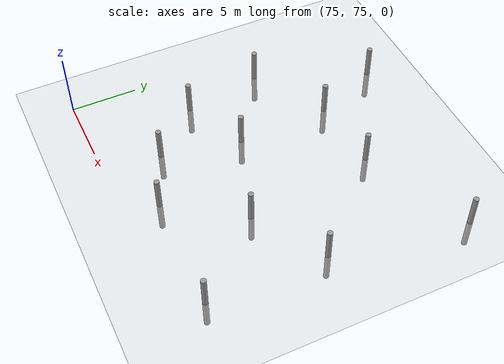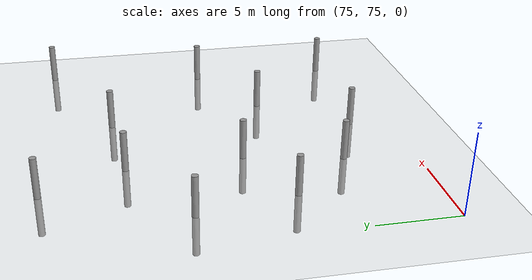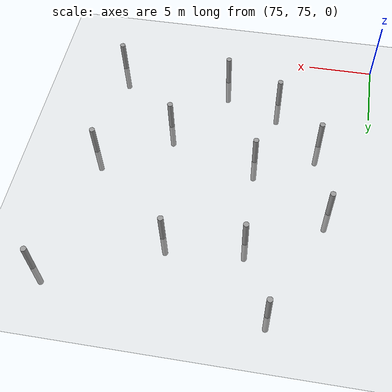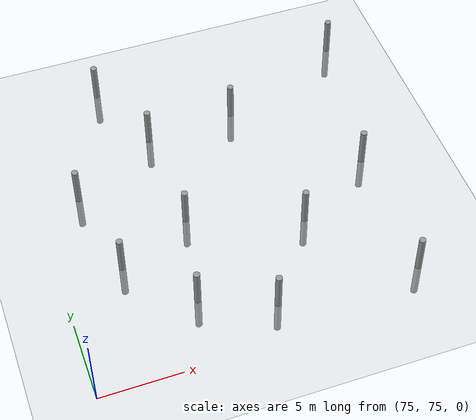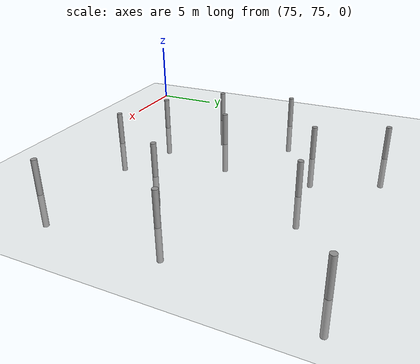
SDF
<sdf version="1.6">
 <world name="default">
  <model name="ground_plane">
   <static>1</static>
   <link name="link">
    <collision name="collision">
     <geometry><plane><normal>0 0 1</normal><size>100 100</size></plane></geometry>
     <surface><friction><ode><mu>100</mu><mu2>50</mu2></ode></friction></surface>
    </collision>
    <visual name="visual">
     <cast_shadows>0</cast_shadows>
     <geometry><plane><normal>0 0 1</normal><size>100 100</size></plane></geometry>
     <material>
      <script><uri>file://media/materials/scripts/gazebo.material</uri><name>Gazebo/Grey</name></script>
     </material>
    </visual>
   </link>
  </model>
  <model name="empty_pillars_2">
   <model name="empty_pillar_clone_1">
    <link name="link">
     <inertial>
      <mass>1</mass>
      <inertia><ixx>0.145833</ixx><ixy>0</ixy><ixz>0</ixz><iyy>0.145833</iyy><iyz>0</iyz><izz>0.125</izz></inertia>
     </inertial>
     <visual name="visual">
      <geometry><cylinder><radius>0.2</radius><length>5</length></cylinder></geometry>
      <material>
       <script><name>Gazebo/Grey</name><uri>file://media/materials/scripts/gazebo.material</uri></script>
       <shader type="vertex"><normal_map>__default__</normal_map></shader>
       <ambient>0.3 0.3 0.3 1</ambient>
       <diffuse>0.7 0.7 0.7 1</diffuse>
       <specular>0.01 0.01 0.01 1</specular>
       <emissive>0 0 0 1</emissive>
      </material>
     </visual>
     <collision name="collision">
      <geometry><cylinder><radius>0.05</radius><length>5</length></cylinder></geometry>
      <surface>
       <friction>
        <ode><mu>1</mu><mu2>1</mu2><fdir1>0 0 0</fdir1><slip1>0</slip1><slip2>0</slip2></ode>
        <torsional>
         <coefficient>1</coefficient>
         <patch_radius>0</patch_radius>
         <surface_radius>0</surface_radius>
         <use_patch_radius>1</use_patch_radius>
         <ode><slip>0</slip></ode>
        </torsional>
       </friction>
       <bounce><restitution_coefficient>0</restitution_coefficient><threshold>1e+06</threshold></bounce>
       <contact>
        <collide_without_contact>0</collide_without_contact>
        <collide_without_contact_bitmask>1</collide_without_contact_bitmask>
        <collide_bitmask>1</collide_bitmask>
        <ode>
         <soft_cfm>0</soft_cfm>
         <soft_erp>0.2</soft_erp>
         <kp>1e+13</kp>
         <kd>1</kd>
         <max_vel>0.01</max_vel>
         <min_depth>0</min_depth>
        </ode>
        <bullet>
         <split_impulse>1</split_impulse>
         <split_impulse_penetration_threshold>-0.01</split_impulse_penetration_threshold>
         <soft_cfm>0</soft_cfm>
         <soft_erp>0.2</soft_erp>
         <kp>1e+13</kp>
         <kd>1</kd>
        </bullet>
       </contact>
      </surface>
     </collision>
    </link>
    <static>0</static>
    <pose>8.92248 2.14838 0 0 -0 0</pose>
   </model>
   <model name="empty_pillar_clone_26">
    <link name="link">
     <inertial>
      <mass>1</mass>
      <inertia><ixx>0.145833</ixx><ixy>0</ixy><ixz>0</ixz><iyy>0.145833</iyy><iyz>0</iyz><izz>0.125</izz></inertia>
     </inertial>
     <visual name="visual">
      <geometry><cylinder><radius>0.2</radius><length>5</length></cylinder></geometry>
      <material>
       <script><name>Gazebo/Grey</name><uri>file://media/materials/scripts/gazebo.material</uri></script>
       <shader type="vertex"><normal_map>__default__</normal_map></shader>
       <ambient>0.3 0.3 0.3 1</ambient>
       <diffuse>0.7 0.7 0.7 1</diffuse>
       <specular>0.01 0.01 0.01 1</specular>
       <emissive>0 0 0 1</emissive>
      </material>
     </visual>
     <collision name="collision">
      <geometry><cylinder><radius>0.05</radius><length>5</length></cylinder></geometry>
      <surface>
       <friction>
        <ode><mu>1</mu><mu2>1</mu2><fdir1>0 0 0</fdir1><slip1>0</slip1><slip2>0</slip2></ode>
        <torsional>
         <coefficient>1</coefficient>
         <patch_radius>0</patch_radius>
         <surface_radius>0</surface_radius>
         <use_patch_radius>1</use_patch_radius>
         <ode><slip>0</slip></ode>
        </torsional>
       </friction>
       <bounce><restitution_coefficient>0</restitution_coefficient><threshold>1e+06</threshold></bounce>
       <contact>
        <collide_without_contact>0</collide_without_contact>
        <collide_without_contact_bitmask>1</collide_without_contact_bitmask>
        <collide_bitmask>1</collide_bitmask>
        <ode>
         <soft_cfm>0</soft_cfm>
         <soft_erp>0.2</soft_erp>
         <kp>1e+13</kp>
         <kd>1</kd>
         <max_vel>0.01</max_vel>
         <min_depth>0</min_depth>
        </ode>
        <bullet>
         <split_impulse>1</split_impulse>
         <split_impulse_penetration_threshold>-0.01</split_impulse_penetration_threshold>
         <soft_cfm>0</soft_cfm>
         <soft_erp>0.2</soft_erp>
         <kp>1e+13</kp>
         <kd>1</kd>
        </bullet>
       </contact>
      </surface>
     </collision>
    </link>
    <static>0</static>
    <pose>7.70652 20.1444 0 0 -0 0</pose>
   </model>
   <model name="empty_pillar_clone_27">
    <link name="link">
     <inertial>
      <mass>1</mass>
      <inertia><ixx>0.145833</ixx><ixy>0</ixy><ixz>0</ixz><iyy>0.145833</iyy><iyz>0</iyz><izz>0.125</izz></inertia>
     </inertial>
     <visual name="visual">
      <geometry><cylinder><radius>0.2</radius><length>5</length></cylinder></geometry>
      <material>
       <script><name>Gazebo/Grey</name><uri>file://media/materials/scripts/gazebo.material</uri></script>
       <shader type="vertex"><normal_map>__default__</normal_map></shader>
       <ambient>0.3 0.3 0.3 1</ambient>
       <diffuse>0.7 0.7 0.7 1</diffuse>
       <specular>0.01 0.01 0.01 1</specular>
       <emissive>0 0 0 1</emissive>
      </material>
     </visual>
     <collision name="collision">
      <geometry><cylinder><radius>0.05</radius><length>5</length></cylinder></geometry>
      <surface>
       <friction>
        <ode><mu>1</mu><mu2>1</mu2><fdir1>0 0 0</fdir1><slip1>0</slip1><slip2>0</slip2></ode>
        <torsional>
         <coefficient>1</coefficient>
         <patch_radius>0</patch_radius>
         <surface_radius>0</surface_radius>
         <use_patch_radius>1</use_patch_radius>
         <ode><slip>0</slip></ode>
        </torsional>
       </friction>
       <bounce><restitution_coefficient>0</restitution_coefficient><threshold>1e+06</threshold></bounce>
       <contact>
        <collide_without_contact>0</collide_without_contact>
        <collide_without_contact_bitmask>1</collide_without_contact_bitmask>
        <collide_bitmask>1</collide_bitmask>
        <ode>
         <soft_cfm>0</soft_cfm>
         <soft_erp>0.2</soft_erp>
         <kp>1e+13</kp>
         <kd>1</kd>
         <max_vel>0.01</max_vel>
         <min_depth>0</min_depth>
        </ode>
        <bullet>
         <split_impulse>1</split_impulse>
         <split_impulse_penetration_threshold>-0.01</split_impulse_penetration_threshold>
         <soft_cfm>0</soft_cfm>
         <soft_erp>0.2</soft_erp>
         <kp>1e+13</kp>
         <kd>1</kd>
        </bullet>
       </contact>
      </surface>
     </collision>
    </link>
    <static>0</static>
    <pose>4.32163 11.823 0 0 -0 0</pose>
   </model>
   <model name="empty_pillar_clone_28">
    <link name="link">
     <inertial>
      <mass>1</mass>
      <inertia><ixx>0.145833</ixx><ixy>0</ixy><ixz>0</ixz><iyy>0.145833</iyy><iyz>0</iyz><izz>0.125</izz></inertia>
     </inertial>
     <visual name="visual">
      <geometry><cylinder><radius>0.2</radius><length>5</length></cylinder></geometry>
      <material>
       <script><name>Gazebo/Grey</name><uri>file://media/materials/scripts/gazebo.material</uri></script>
       <shader type="vertex"><normal_map>__default__</normal_map></shader>
       <ambient>0.3 0.3 0.3 1</ambient>
       <diffuse>0.7 0.7 0.7 1</diffuse>
       <specular>0.01 0.01 0.01 1</specular>
       <emissive>0 0 0 1</emissive>
      </material>
     </visual>
     <collision name="collision">
      <geometry><cylinder><radius>0.05</radius><length>5</length></cylinder></geometry>
      <surface>
       <friction>
        <ode><mu>1</mu><mu2>1</mu2><fdir1>0 0 0</fdir1><slip1>0</slip1><slip2>0</slip2></ode>
        <torsional>
         <coefficient>1</coefficient>
         <patch_radius>0</patch_radius>
         <surface_radius>0</surface_radius>
         <use_patch_radius>1</use_patch_radius>
         <ode><slip>0</slip></ode>
        </torsional>
       </friction>
       <bounce><restitution_coefficient>0</restitution_coefficient><threshold>1e+06</threshold></bounce>
       <contact>
        <collide_without_contact>0</collide_without_contact>
        <collide_without_contact_bitmask>1</collide_without_contact_bitmask>
        <collide_bitmask>1</collide_bitmask>
        <ode>
         <soft_cfm>0</soft_cfm>
         <soft_erp>0.2</soft_erp>
         <kp>1e+13</kp>
         <kd>1</kd>
         <max_vel>0.01</max_vel>
         <min_depth>0</min_depth>
        </ode>
        <bullet>
         <split_impulse>1</split_impulse>
         <split_impulse_penetration_threshold>-0.01</split_impulse_penetration_threshold>
         <soft_cfm>0</soft_cfm>
         <soft_erp>0.2</soft_erp>
         <kp>1e+13</kp>
         <kd>1</kd>
        </bullet>
       </contact>
      </surface>
     </collision>
    </link>
    <static>0</static>
    <pose>15.5447 15.5867 0 0 -0 0</pose>
   </model>
   <model name="empty_pillar_clone_29">
    <link name="link">
     <inertial>
      <mass>1</mass>
      <inertia><ixx>0.145833</ixx><ixy>0</ixy><ixz>0</ixz><iyy>0.145833</iyy><iyz>0</iyz><izz>0.125</izz></inertia>
     </inertial>
     <visual name="visual">
      <geometry><cylinder><radius>0.2</radius><length>5</length></cylinder></geometry>
      <material>
       <script><name>Gazebo/Grey</name><uri>file://media/materials/scripts/gazebo.material</uri></script>
       <shader type="vertex"><normal_map>__default__</normal_map></shader>
       <ambient>0.3 0.3 0.3 1</ambient>
       <diffuse>0.7 0.7 0.7 1</diffuse>
       <specular>0.01 0.01 0.01 1</specular>
       <emissive>0 0 0 1</emissive>
      </material>
     </visual>
     <collision name="collision">
      <geometry><cylinder><radius>0.05</radius><length>5</length></cylinder></geometry>
      <surface>
       <friction>
        <ode><mu>1</mu><mu2>1</mu2><fdir1>0 0 0</fdir1><slip1>0</slip1><slip2>0</slip2></ode>
        <torsional>
         <coefficient>1</coefficient>
         <patch_radius>0</patch_radius>
         <surface_radius>0</surface_radius>
         <use_patch_radius>1</use_patch_radius>
         <ode><slip>0</slip></ode>
        </torsional>
       </friction>
       <bounce><restitution_coefficient>0</restitution_coefficient><threshold>1e+06</threshold></bounce>
       <contact>
        <collide_without_contact>0</collide_without_contact>
        <collide_without_contact_bitmask>1</collide_without_contact_bitmask>
        <collide_bitmask>1</collide_bitmask>
        <ode>
         <soft_cfm>0</soft_cfm>
         <soft_erp>0.2</soft_erp>
         <kp>1e+13</kp>
         <kd>1</kd>
         <max_vel>0.01</max_vel>
         <min_depth>0</min_depth>
        </ode>
        <bullet>
         <split_impulse>1</split_impulse>
         <split_impulse_penetration_threshold>-0.01</split_impulse_penetration_threshold>
         <soft_cfm>0</soft_cfm>
         <soft_erp>0.2</soft_erp>
         <kp>1e+13</kp>
         <kd>1</kd>
        </bullet>
       </contact>
      </surface>
     </collision>
    </link>
    <static>0</static>
    <pose>10.08 8.0876 0 0 -0 0</pose>
   </model>
   <model name="empty_pillar_clone_30">
    <link name="link">
     <inertial>
      <mass>1</mass>
      <inertia><ixx>0.145833</ixx><ixy>0</ixy><ixz>0</ixz><iyy>0.145833</iyy><iyz>0</iyz><izz>0.125</izz></inertia>
     </inertial>
     <visual name="visual">
      <geometry><cylinder><radius>0.2</radius><length>5</length></cylinder></geometry>
      <material>
       <script><name>Gazebo/Grey</name><uri>file://media/materials/scripts/gazebo.material</uri></script>
       <shader type="vertex"><normal_map>__default__</normal_map></shader>
       <ambient>0.3 0.3 0.3 1</ambient>
       <diffuse>0.7 0.7 0.7 1</diffuse>
       <specular>0.01 0.01 0.01 1</specular>
       <emissive>0 0 0 1</emissive>
      </material>
     </visual>
     <collision name="collision">
      <geometry><cylinder><radius>0.05</radius><length>5</length></cylinder></geometry>
      <surface>
       <friction>
        <ode><mu>1</mu><mu2>1</mu2><fdir1>0 0 0</fdir1><slip1>0</slip1><slip2>0</slip2></ode>
        <torsional>
         <coefficient>1</coefficient>
         <patch_radius>0</patch_radius>
         <surface_radius>0</surface_radius>
         <use_patch_radius>1</use_patch_radius>
         <ode><slip>0</slip></ode>
        </torsional>
       </friction>
       <bounce><restitution_coefficient>0</restitution_coefficient><threshold>1e+06</threshold></bounce>
       <contact>
        <collide_without_contact>0</collide_without_contact>
        <collide_without_contact_bitmask>1</collide_without_contact_bitmask>
        <collide_bitmask>1</collide_bitmask>
        <ode>
         <soft_cfm>0</soft_cfm>
         <soft_erp>0.2</soft_erp>
         <kp>1e+13</kp>
         <kd>1</kd>
         <max_vel>0.01</max_vel>
         <min_depth>0</min_depth>
        </ode>
        <bullet>
         <split_impulse>1</split_impulse>
         <split_impulse_penetration_threshold>-0.01</split_impulse_penetration_threshold>
         <soft_cfm>0</soft_cfm>
         <soft_erp>0.2</soft_erp>
         <kp>1e+13</kp>
         <kd>1</kd>
        </bullet>
       </contact>
      </surface>
     </collision>
    </link>
    <static>0</static>
    <pose>23.752 19.2231 0 0 -0 0</pose>
   </model>
   <model name="empty_pillar_clone_31">
    <link name="link">
     <inertial>
      <mass>1</mass>
      <inertia><ixx>0.145833</ixx><ixy>0</ixy><ixz>0</ixz><iyy>0.145833</iyy><iyz>0</iyz><izz>0.125</izz></inertia>
     </inertial>
     <visual name="visual">
      <geometry><cylinder><radius>0.2</radius><length>5</length></cylinder></geometry>
      <material>
       <script><name>Gazebo/Grey</name><uri>file://media/materials/scripts/gazebo.material</uri></script>
       <shader type="vertex"><normal_map>__default__</normal_map></shader>
       <ambient>0.3 0.3 0.3 1</ambient>
       <diffuse>0.7 0.7 0.7 1</diffuse>
       <specular>0.01 0.01 0.01 1</specular>
       <emissive>0 0 0 1</emissive>
      </material>
     </visual>
     <collision name="collision">
      <geometry><cylinder><radius>0.05</radius><length>5</length></cylinder></geometry>
      <surface>
       <friction>
        <ode><mu>1</mu><mu2>1</mu2><fdir1>0 0 0</fdir1><slip1>0</slip1><slip2>0</slip2></ode>
        <torsional>
         <coefficient>1</coefficient>
         <patch_radius>0</patch_radius>
         <surface_radius>0</surface_radius>
         <use_patch_radius>1</use_patch_radius>
         <ode><slip>0</slip></ode>
        </torsional>
       </friction>
       <bounce><restitution_coefficient>0</restitution_coefficient><threshold>1e+06</threshold></bounce>
       <contact>
        <collide_without_contact>0</collide_without_contact>
        <collide_without_contact_bitmask>1</collide_without_contact_bitmask>
        <collide_bitmask>1</collide_bitmask>
        <ode>
         <soft_cfm>0</soft_cfm>
         <soft_erp>0.2</soft_erp>
         <kp>1e+13</kp>
         <kd>1</kd>
         <max_vel>0.01</max_vel>
         <min_depth>0</min_depth>
        </ode>
        <bullet>
         <split_impulse>1</split_impulse>
         <split_impulse_penetration_threshold>-0.01</split_impulse_penetration_threshold>
         <soft_cfm>0</soft_cfm>
         <soft_erp>0.2</soft_erp>
         <kp>1e+13</kp>
         <kd>1</kd>
        </bullet>
       </contact>
      </surface>
     </collision>
    </link>
    <static>0</static>
    <pose>22.0722 9.04182 0 0 -0 0</pose>
   </model>
   <model name="empty_pillar_clone_32">
    <link name="link">
     <inertial>
      <mass>1</mass>
      <inertia><ixx>0.145833</ixx><ixy>0</ixy><ixz>0</ixz><iyy>0.145833</iyy><iyz>0</iyz><izz>0.125</izz></inertia>
     </inertial>
     <visual name="visual">
      <geometry><cylinder><radius>0.2</radius><length>5</length></cylinder></geometry>
      <material>
       <script><name>Gazebo/Grey</name><uri>file://media/materials/scripts/gazebo.material</uri></script>
       <shader type="vertex"><normal_map>__default__</normal_map></shader>
       <ambient>0.3 0.3 0.3 1</ambient>
       <diffuse>0.7 0.7 0.7 1</diffuse>
       <specular>0.01 0.01 0.01 1</specular>
       <emissive>0 0 0 1</emissive>
      </material>
     </visual>
     <collision name="collision">
      <geometry><cylinder><radius>0.05</radius><length>5</length></cylinder></geometry>
      <surface>
       <friction>
        <ode><mu>1</mu><mu2>1</mu2><fdir1>0 0 0</fdir1><slip1>0</slip1><slip2>0</slip2></ode>
        <torsional>
         <coefficient>1</coefficient>
         <patch_radius>0</patch_radius>
         <surface_radius>0</surface_radius>
         <use_patch_radius>1</use_patch_radius>
         <ode><slip>0</slip></ode>
        </torsional>
       </friction>
       <bounce><restitution_coefficient>0</restitution_coefficient><threshold>1e+06</threshold></bounce>
       <contact>
        <collide_without_contact>0</collide_without_contact>
        <collide_without_contact_bitmask>1</collide_without_contact_bitmask>
        <collide_bitmask>1</collide_bitmask>
        <ode>
         <soft_cfm>0</soft_cfm>
         <soft_erp>0.2</soft_erp>
         <kp>1e+13</kp>
         <kd>1</kd>
         <max_vel>0.01</max_vel>
         <min_depth>0</min_depth>
        </ode>
        <bullet>
         <split_impulse>1</split_impulse>
         <split_impulse_penetration_threshold>-0.01</split_impulse_penetration_threshold>
         <soft_cfm>0</soft_cfm>
         <soft_erp>0.2</soft_erp>
         <kp>1e+13</kp>
         <kd>1</kd>
        </bullet>
       </contact>
      </surface>
     </collision>
    </link>
    <static>0</static>
    <pose>21.9854 0.15966 0 0 -0 0</pose>
   </model>
   <model name="empty_pillar_clone_49">
    <link name="link">
     <inertial>
      <mass>1</mass>
      <inertia><ixx>0.145833</ixx><ixy>0</ixy><ixz>0</ixz><iyy>0.145833</iyy><iyz>0</iyz><izz>0.125</izz></inertia>
     </inertial>
     <visual name="visual">
      <geometry><cylinder><radius>0.2</radius><length>5</length></cylinder></geometry>
      <material>
       <script><name>Gazebo/Grey</name><uri>file://media/materials/scripts/gazebo.material</uri></script>
       <shader type="vertex"><normal_map>__default__</normal_map></shader>
       <ambient>0.3 0.3 0.3 1</ambient>
       <diffuse>0.7 0.7 0.7 1</diffuse>
       <specular>0.01 0.01 0.01 1</specular>
       <emissive>0 0 0 1</emissive>
      </material>
     </visual>
     <collision name="collision">
      <geometry><cylinder><radius>0.05</radius><length>5</length></cylinder></geometry>
      <surface>
       <friction>
        <ode><mu>1</mu><mu2>1</mu2><fdir1>0 0 0</fdir1><slip1>0</slip1><slip2>0</slip2></ode>
        <torsional>
         <coefficient>1</coefficient>
         <patch_radius>0</patch_radius>
         <surface_radius>0</surface_radius>
         <use_patch_radius>1</use_patch_radius>
         <ode><slip>0</slip></ode>
        </torsional>
       </friction>
       <bounce><restitution_coefficient>0</restitution_coefficient><threshold>1e+06</threshold></bounce>
       <contact>
        <collide_without_contact>0</collide_without_contact>
        <collide_without_contact_bitmask>1</collide_without_contact_bitmask>
        <collide_bitmask>1</collide_bitmask>
        <ode>
         <soft_cfm>0</soft_cfm>
         <soft_erp>0.2</soft_erp>
         <kp>1e+13</kp>
         <kd>1</kd>
         <max_vel>0.01</max_vel>
         <min_depth>0</min_depth>
        </ode>
        <bullet>
         <split_impulse>1</split_impulse>
         <split_impulse_penetration_threshold>-0.01</split_impulse_penetration_threshold>
         <soft_cfm>0</soft_cfm>
         <soft_erp>0.2</soft_erp>
         <kp>1e+13</kp>
         <kd>1</kd>
        </bullet>
       </contact>
      </surface>
     </collision>
    </link>
    <static>0</static>
    <pose>9.84768 15.1425 0 0 -0 0</pose>
   </model>
   <model name="empty_pillar_clone_55">
    <link name="link">
     <inertial>
      <mass>1</mass>
      <inertia><ixx>0.145833</ixx><ixy>0</ixy><ixz>0</ixz><iyy>0.145833</iyy><iyz>0</iyz><izz>0.125</izz></inertia>
     </inertial>
     <visual name="visual">
      <geometry><cylinder><radius>0.2</radius><length>5</length></cylinder></geometry>
      <material>
       <script><name>Gazebo/Grey</name><uri>file://media/materials/scripts/gazebo.material</uri></script>
       <shader type="vertex"><normal_map>__default__</normal_map></shader>
       <ambient>0.3 0.3 0.3 1</ambient>
       <diffuse>0.7 0.7 0.7 1</diffuse>
       <specular>0.01 0.01 0.01 1</specular>
       <emissive>0 0 0 1</emissive>
      </material>
     </visual>
     <collision name="collision">
      <geometry><cylinder><radius>0.05</radius><length>5</length></cylinder></geometry>
      <surface>
       <friction>
        <ode><mu>1</mu><mu2>1</mu2><fdir1>0 0 0</fdir1><slip1>0</slip1><slip2>0</slip2></ode>
        <torsional>
         <coefficient>1</coefficient>
         <patch_radius>0</patch_radius>
         <surface_radius>0</surface_radius>
         <use_patch_radius>1</use_patch_radius>
         <ode><slip>0</slip></ode>
        </torsional>
       </friction>
       <bounce><restitution_coefficient>0</restitution_coefficient><threshold>1e+06</threshold></bounce>
       <contact>
        <collide_without_contact>0</collide_without_contact>
        <collide_without_contact_bitmask>1</collide_without_contact_bitmask>
        <collide_bitmask>1</collide_bitmask>
        <ode>
         <soft_cfm>0</soft_cfm>
         <soft_erp>0.2</soft_erp>
         <kp>1e+13</kp>
         <kd>1</kd>
         <max_vel>0.01</max_vel>
         <min_depth>0</min_depth>
        </ode>
        <bullet>
         <split_impulse>1</split_impulse>
         <split_impulse_penetration_threshold>-0.01</split_impulse_penetration_threshold>
         <soft_cfm>0</soft_cfm>
         <soft_erp>0.2</soft_erp>
         <kp>1e+13</kp>
         <kd>1</kd>
        </bullet>
       </contact>
      </surface>
     </collision>
    </link>
    <static>0</static>
    <pose>13.2247 0.382706 0 0 -0 0</pose>
   </model>
   <model name="empty_pillar_clone_57">
    <link name="link">
     <inertial>
      <mass>1</mass>
      <inertia><ixx>0.145833</ixx><ixy>0</ixy><ixz>0</ixz><iyy>0.145833</iyy><iyz>0</iyz><izz>0.125</izz></inertia>
     </inertial>
     <visual name="visual">
      <geometry><cylinder><radius>0.2</radius><length>5</length></cylinder></geometry>
      <material>
       <script><name>Gazebo/Grey</name><uri>file://media/materials/scripts/gazebo.material</uri></script>
       <shader type="vertex"><normal_map>__default__</normal_map></shader>
       <ambient>0.3 0.3 0.3 1</ambient>
       <diffuse>0.7 0.7 0.7 1</diffuse>
       <specular>0.01 0.01 0.01 1</specular>
       <emissive>0 0 0 1</emissive>
      </material>
     </visual>
     <collision name="collision">
      <geometry><cylinder><radius>0.05</radius><length>5</length></cylinder></geometry>
      <surface>
       <friction>
        <ode><mu>1</mu><mu2>1</mu2><fdir1>0 0 0</fdir1><slip1>0</slip1><slip2>0</slip2></ode>
        <torsional>
         <coefficient>1</coefficient>
         <patch_radius>0</patch_radius>
         <surface_radius>0</surface_radius>
         <use_patch_radius>1</use_patch_radius>
         <ode><slip>0</slip></ode>
        </torsional>
       </friction>
       <bounce><restitution_coefficient>0</restitution_coefficient><threshold>1e+06</threshold></bounce>
       <contact>
        <collide_without_contact>0</collide_without_contact>
        <collide_without_contact_bitmask>1</collide_without_contact_bitmask>
        <collide_bitmask>1</collide_bitmask>
        <ode>
         <soft_cfm>0</soft_cfm>
         <soft_erp>0.2</soft_erp>
         <kp>1e+13</kp>
         <kd>1</kd>
         <max_vel>0.01</max_vel>
         <min_depth>0</min_depth>
        </ode>
        <bullet>
         <split_impulse>1</split_impulse>
         <split_impulse_penetration_threshold>-0.01</split_impulse_penetration_threshold>
         <soft_cfm>0</soft_cfm>
         <soft_erp>0.2</soft_erp>
         <kp>1e+13</kp>
         <kd>1</kd>
        </bullet>
       </contact>
      </surface>
     </collision>
    </link>
    <static>0</static>
    <pose>5.4355 5.86468 0 0 -0 0</pose>
   </model>
   <model name="empty_pillar_clone_7">
    <link name="link">
     <inertial>
      <mass>1</mass>
      <inertia><ixx>0.145833</ixx><ixy>0</ixy><ixz>0</ixz><iyy>0.145833</iyy><iyz>0</iyz><izz>0.125</izz></inertia>
     </inertial>
     <visual name="visual">
      <geometry><cylinder><radius>0.2</radius><length>5</length></cylinder></geometry>
      <material>
       <script><name>Gazebo/Grey</name><uri>file://media/materials/scripts/gazebo.material</uri></script>
       <shader type="vertex"><normal_map>__default__</normal_map></shader>
       <ambient>0.3 0.3 0.3 1</ambient>
       <diffuse>0.7 0.7 0.7 1</diffuse>
       <specular>0.01 0.01 0.01 1</specular>
       <emissive>0 0 0 1</emissive>
      </material>
     </visual>
     <collision name="collision">
      <geometry><cylinder><radius>0.05</radius><length>5</length></cylinder></geometry>
      <surface>
       <friction>
        <ode><mu>1</mu><mu2>1</mu2><fdir1>0 0 0</fdir1><slip1>0</slip1><slip2>0</slip2></ode>
        <torsional>
         <coefficient>1</coefficient>
         <patch_radius>0</patch_radius>
         <surface_radius>0</surface_radius>
         <use_patch_radius>1</use_patch_radius>
         <ode><slip>0</slip></ode>
        </torsional>
       </friction>
       <bounce><restitution_coefficient>0</restitution_coefficient><threshold>1e+06</threshold></bounce>
       <contact>
        <collide_without_contact>0</collide_without_contact>
        <collide_without_contact_bitmask>1</collide_without_contact_bitmask>
        <collide_bitmask>1</collide_bitmask>
        <ode>
         <soft_cfm>0</soft_cfm>
         <soft_erp>0.2</soft_erp>
         <kp>1e+13</kp>
         <kd>1</kd>
         <max_vel>0.01</max_vel>
         <min_depth>0</min_depth>
        </ode>
        <bullet>
         <split_impulse>1</split_impulse>
         <split_impulse_penetration_threshold>-0.01</split_impulse_penetration_threshold>
         <soft_cfm>0</soft_cfm>
         <soft_erp>0.2</soft_erp>
         <kp>1e+13</kp>
         <kd>1</kd>
        </bullet>
       </contact>
      </surface>
     </collision>
    </link>
    <static>0</static>
    <pose>16.9242 5.74519 0 0 -0 0</pose>
   </model>
   <static>0</static>
   <pose>73.3006 77.2503 0 0 -0 0</pose>
  </model>
 </world>
</sdf>
